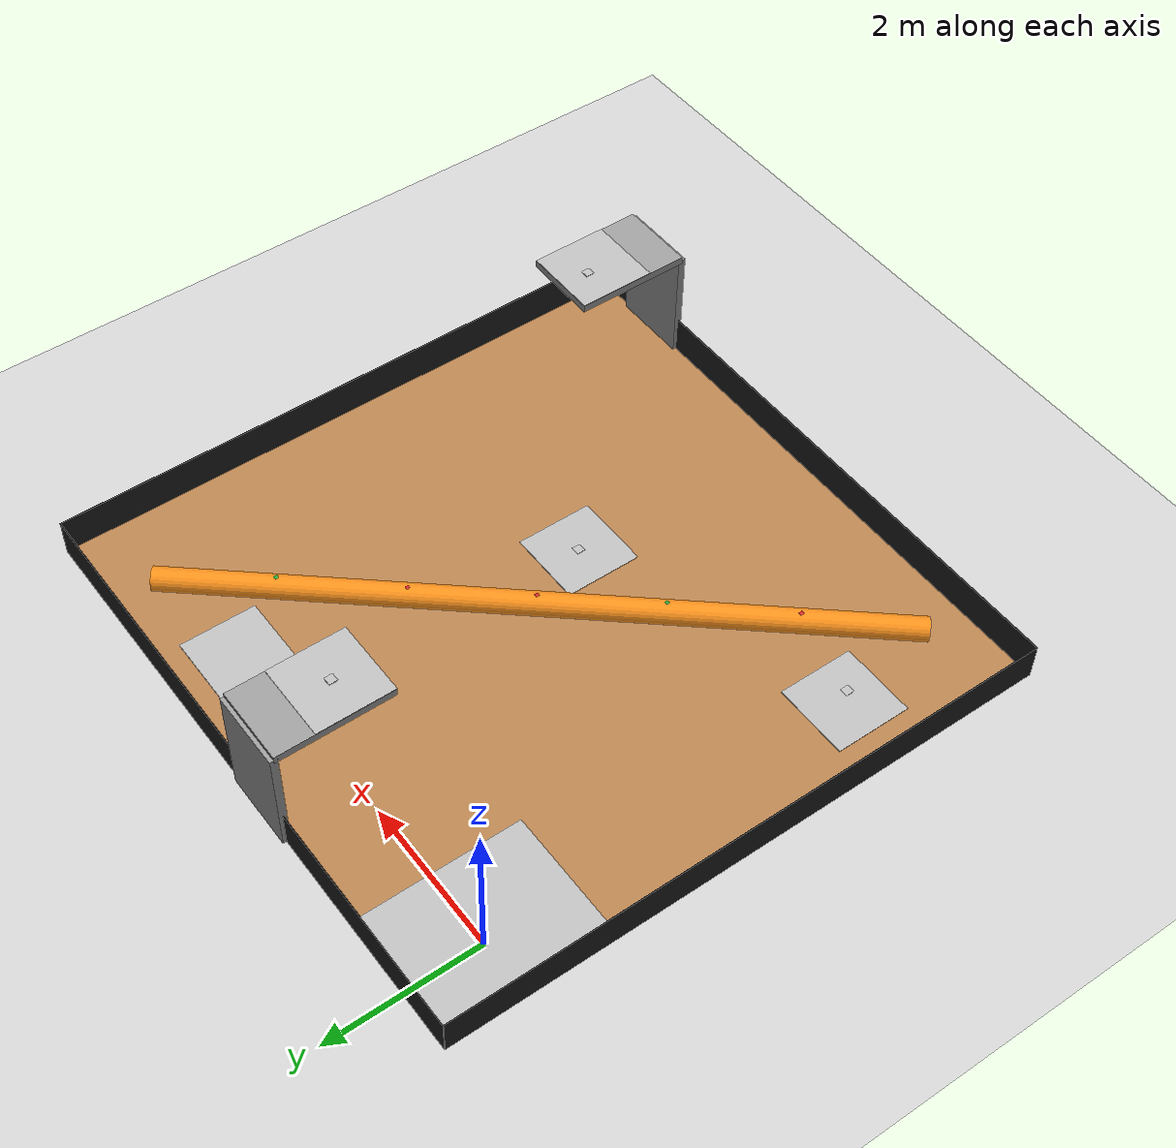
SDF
<?xml version="1.0" ?>
<sdf version="1.4">
  <world name="default">
    <include>
      <uri>model://ground_plane</uri>
    </include>
    <include>
      <uri>model://sun</uri>
    </include>

    <plugin name="ros_interface_plugin" filename="librotors_gazebo_ros_interface_plugin.so"/>

    <spherical_coordinates>
      <surface_model>EARTH_WGS84</surface_model>
      <latitude_deg>47.3667</latitude_deg>
      <longitude_deg>8.5500</longitude_deg>
      <elevation>500.0</elevation>
      <heading_deg>0</heading_deg>
    </spherical_coordinates>

    <physics type='ode'>
      <ode>
        <solver>
          <type>quick</type>
          <iters>1000</iters>
          <sor>1.3</sor>
        </solver>
        <constraints>
          <cfm>0</cfm>
          <erp>0.2</erp>
          <contact_max_correcting_vel>100</contact_max_correcting_vel>
          <contact_surface_layer>0.001</contact_surface_layer>
        </constraints>
      </ode>
      <max_step_size>0.01</max_step_size>
      <real_time_factor>1</real_time_factor>
      <real_time_update_rate>100</real_time_update_rate>
      <gravity>0 0 -9.8</gravity>
    </physics>

    <include>
      <uri>model://floor_arena</uri>
      <pose>3.25 -3.0 0.0 0.0 0.0 0.0</pose>
      <name>floor_arena</name>
    </include>

    <include>
      <uri>model://coastal_base</uri>
      <pose>0.0 0.0 0.501 0.0 0.0 0.0</pose>
      <name>coastal_base</name>
    </include>

    <include>
      <uri>model://hanging_base</uri>
      <pose>2.75 0.0 1.551 0.0 0.0 0.0</pose>
      <name>hanging_base_1</name>
    </include>

    <include>
      <uri>model://hanging_base</uri>
      <pose>6.25 -6.0 1.551 0.0 0.0 0.0</pose>
      <name>hanging_base_2</name>
    </include>

    <include>
      <uri>model://hanging_base</uri>
      <pose>4.66 0.15 0.101 0.0 0.0 0.0</pose>
      <name>land_base_1</name>
    </include>

    <include>
      <uri>model://hanging_base</uri>
      <pose>3.66 -3.9 0.101 0.0 0.0 0.0</pose>
      <name>land_base_2</name>
    </include>

    <include>
      <uri>model://hanging_base</uri>
      <pose>0.15 -5.0 0.101 0.0 0.0 0.0</pose>
      <name>land_base_3</name>
    </include>

    <include>
      <uri>model://gas_marker_1</uri>
      <pose>2.75 0.0 1.561 0.0 0.0 0.0</pose>
      <name>gas_marker_1</name>
    </include>

    <include>
      <uri>model://gas_marker_2</uri>
      <pose>6.2 -5.88 1.561 0.0 0.0 0.0</pose>
      <name>gas_marker_2</name>
    </include>

    <include>
      <uri>model://gas_marker_3</uri>
      <pose>0.23 -5.11 0.111 0.0 0.0 0.0</pose>
      <name>gas_marker_3</name>
    </include>

    <include>
      <uri>model://gas_marker_4</uri>
      <pose>3.66 -3.9 0.111 0.0 0.0 0.0</pose>
      <name>gas_marker_4</name>
    </include>

  </world>
</sdf>

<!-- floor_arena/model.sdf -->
<sdf version="1.5">
  <model name="table">
    <static>true</static>
    <link name="link">
      <collision name="surface">
        <pose>0 0 0.0 0 0 0</pose>
        <geometry>
          <box>
            <size>8.0 8.0 0.01</size>
          </box>
        </geometry>
        <surface>
          <friction>
            <ode>
              <mu>0.6</mu>
              <mu2>0.6</mu2>
            </ode>
          </friction>
        </surface>
      </collision>
      <visual name="visual1">
        <pose>0 0 0.0 0 0 0</pose>
        <geometry>
          <box>
            <size>8.0 8.0 0.01</size>
          </box>
        </geometry>
        <material>
          <script>
            <uri>file://media/materials/scripts/gazebo.material</uri>
            <name>Gazebo/WoodPallet</name>
          </script>
        </material>
      </visual>

      <collision name="surface2">
        <pose>0 4.0 0.25 0 0 0</pose>
        <geometry>
          <box>
            <size>8.0 0.01 0.5</size>
          </box>
        </geometry>
        <surface>
          <friction>
            <ode>
              <mu>0.6</mu>
              <mu2>0.6</mu2>
            </ode>
          </friction>
        </surface>
      </collision>
      <visual name="visual2">
        <pose>0 4.0 0.25 0 0 0</pose>
        <geometry>
          <box>
            <size>8.0 0.01 0.5</size>
          </box>
        </geometry>
        <material>
          <script>
            <uri>file://media/materials/scripts/gazebo.material</uri>
            <name>Gazebo/Black</name>
          </script>
        </material>
      </visual>

      <collision name="surface3">
        <pose>0 -4.0 0.25 0 0 0</pose>
        <geometry>
          <box>
            <size>8.0 0.01 0.5</size>
          </box>
        </geometry>
        <surface>
          <friction>
            <ode>
              <mu>0.6</mu>
              <mu2>0.6</mu2>
            </ode>
          </friction>
        </surface>
      </collision>
      <visual name="visual3">
        <pose>0 -4.0 0.25 0 0 0</pose>
        <geometry>
          <box>
            <size>8.0 0.01 0.5</size>
          </box>
        </geometry>
        <material>
          <script>
            <uri>file://media/materials/scripts/gazebo.material</uri>
            <name>Gazebo/Black</name>
          </script>
        </material>
      </visual>

      <collision name="surface4">
        <pose>4.0 0.0 0.25 0 0 0</pose>
        <geometry>
          <box>
            <size>0.01 8.0 0.5</size>
          </box>
        </geometry>
        <surface>
          <friction>
            <ode>
              <mu>0.6</mu>
              <mu2>0.6</mu2>
            </ode>
          </friction>
        </surface>
      </collision>
      <visual name="visual4">
        <pose>4.0 0.0 0.25 0 0 0</pose>
        <geometry>
          <box>
            <size>0.01 8.0 0.5</size>
          </box>
        </geometry>
        <material>
          <script>
            <uri>file://media/materials/scripts/gazebo.material</uri>
            <name>Gazebo/Black</name>
          </script>
        </material>
      </visual>

      <collision name="surface5">
        <pose>-4.0 0.0 0.25 0 0 0</pose>
        <geometry>
          <box>
            <size>0.01 8.0 0.5</size>
          </box>
        </geometry>
        <surface>
          <friction>
            <ode>
              <mu>0.6</mu>
              <mu2>0.6</mu2>
            </ode>
          </friction>
        </surface>
      </collision>
      <visual name="visual5">
        <pose>-4.0 0.0 0.25 0 0 0</pose>
        <geometry>
          <box>
            <size>0.01 8.0 0.5</size>
          </box>
        </geometry>
        <material>
          <script>
            <uri>file://media/materials/scripts/gazebo.material</uri>
            <name>Gazebo/Black</name>
          </script>
        </material>
      </visual>

      <collision name="surface6">
        <pose>-3.25 3.0 0.25 0 0 0</pose>
        <geometry>
          <box>
            <size>1.5 2.0 0.5</size>
          </box>
        </geometry>
        <surface>
          <friction>
            <ode>
              <mu>0.6</mu>
              <mu2>0.6</mu2>
            </ode>
          </friction>
        </surface>
      </collision>
      <visual name="visual6">
        <pose>-3.25 3.0 0.25 0 0 0</pose>
        <geometry>
          <box>
            <size>1.5 2.0 0.5</size>
          </box>
        </geometry>
        <material>
          <script>
            <uri>file://media/materials/scripts/gazebo.material</uri>
            <name>Gazebo/Black</name>
          </script>
        </material>
      </visual>

      <collision name="surface7">
        <pose>3.0 -4.0 0.75 0 0 0</pose>
        <geometry>
          <box>
            <size>1.0 0.1 1.5</size>
          </box>
        </geometry>
        <surface>
          <friction>
            <ode>
              <mu>0.6</mu>
              <mu2>0.6</mu2>
            </ode>
          </friction>
        </surface>
      </collision>
      <visual name="visual7">
        <pose>3.0 -4.0 0.75 0 0 0</pose>
        <geometry>
          <box>
            <size>1.0 0.1 1.5</size>
          </box>
        </geometry>
        <material>
          <script>
            <uri>file://media/materials/scripts/gazebo.material</uri>
            <name>Gazebo/Gray</name>
          </script>
        </material>
      </visual>

      <collision name="surface8">
        <pose>3.0 -3.25 1.5 0 0 0</pose>
        <geometry>
          <box>
            <size>1.0 1.5 0.1</size>
          </box>
        </geometry>
        <surface>
          <friction>
            <ode>
              <mu>0.6</mu>
              <mu2>0.6</mu2>
            </ode>
          </friction>
        </surface>
      </collision>
      <visual name="visual8">
        <pose>3.0 -3.25 1.5 0 0 0</pose>
        <geometry>
          <box>
            <size>1.0 1.5 0.1</size>
          </box>
        </geometry>
        <material>
          <script>
            <uri>file://media/materials/scripts/gazebo.material</uri>
            <name>Gazebo/Gray</name>
          </script>
        </material>
      </visual>

      <collision name="surface9">
        <pose>-0.5 4.0 0.75 0 0 0</pose>
        <geometry>
          <box>
            <size>1.0 0.1 1.5</size>
          </box>
        </geometry>
        <surface>
          <friction>
            <ode>
              <mu>0.6</mu>
              <mu2>0.6</mu2>
            </ode>
          </friction>
        </surface>
      </collision>
      <visual name="visual9">
        <pose>-0.5 4.0 0.75 0 0 0</pose>
        <geometry>
          <box>
            <size>1.0 0.1 1.5</size>
          </box>
        </geometry>
        <material>
          <script>
            <uri>file://media/materials/scripts/gazebo.material</uri>
            <name>Gazebo/Gray</name>
          </script>
        </material>
      </visual>

      <collision name="surface10">
        <pose>-0.5 3.25 1.5 0 0 0</pose>
        <geometry>
          <box>
            <size>1.0 1.5 0.1</size>
          </box>
        </geometry>
        <surface>
          <friction>
            <ode>
              <mu>0.6</mu>
              <mu2>0.6</mu2>
            </ode>
          </friction>
        </surface>
      </collision>
      <visual name="visual10">
        <pose>-0.5 3.25 1.5 0 0 0</pose>
        <geometry>
          <box>
            <size>1.0 1.5 0.1</size>
          </box>
        </geometry>
        <material>
          <script>
            <uri>file://media/materials/scripts/gazebo.material</uri>
            <name>Gazebo/Gray</name>
          </script>
        </material>
      </visual>

      <collision name="surface11">
        <pose>0.0 0.0 0.2 1.57 0 -0.7071</pose>
        <geometry>
          <cylinder>
              <radius>0.2</radius>
              <length>9.0</length>
          </cylinder>
        </geometry>
        <surface>
          <friction>
            <ode>
              <mu>0.6</mu>
              <mu2>0.6</mu2>
            </ode>
          </friction>
        </surface>
      </collision>
      <visual name="visual11">
        <pose>0.0 0.0 0.15 1.57 0 -0.7071</pose>
        <geometry>
          <cylinder>
              <radius>0.15</radius>
              <length>9.0</length>
          </cylinder>
        </geometry>
        <material>
          <script>
            <uri>file://media/materials/scripts/gazebo.material</uri>
            <name>Gazebo/Orange</name>
          </script>
        </material>
      </visual>

      <visual name="sensor1">
        <pose>-1.98 -2.3 0.3025 0 0 0</pose>
        <geometry>
          <box>
            <size>0.05 0.05 0.00001</size>
          </box>
        </geometry>
        <material>
          <script>
            <uri>file://media/materials/scripts/gazebo.material</uri>
            <name>Gazebo/Red</name>
          </script>
        </material>
      </visual>

      <visual name="sensor2">
        <pose>-0.96 -1.15 0.3025 0 0 0</pose>
        <geometry>
          <box>
            <size>0.05 0.05 0.00001</size>
          </box>
        </geometry>
        <material>
          <script>
            <uri>file://media/materials/scripts/gazebo.material</uri>
            <name>Gazebo/Green</name>
          </script>
        </material>
      </visual>

      <visual name="sensor3">
        <pose>0.0 0.0 0.3025 0 0 0</pose>
        <geometry>
          <box>
            <size>0.05 0.05 0.00001</size>
          </box>
        </geometry>
        <material>
          <script>
            <uri>file://media/materials/scripts/gazebo.material</uri>
            <name>Gazebo/Red</name>
          </script>
        </material>
      </visual>

      <visual name="sensor4">
        <pose>0.96 1.15 0.3025 0 0 0</pose>
        <geometry>
          <box>
            <size>0.05 0.05 0.00001</size>
          </box>
        </geometry>
        <material>
          <script>
            <uri>file://media/materials/scripts/gazebo.material</uri>
            <name>Gazebo/Red</name>
          </script>
        </material>
      </visual>

      <visual name="sensor5">
        <pose>1.98 2.3 0.3025 0 0 0</pose>
        <geometry>
          <box>
            <size>0.05 0.05 0.00001</size>
          </box>
        </geometry>
        <material>
          <script>
            <uri>file://media/materials/scripts/gazebo.material</uri>
            <name>Gazebo/Green</name>
          </script>
        </material>
      </visual>

    </link>
  </model>
</sdf>

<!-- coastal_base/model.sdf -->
<sdf version="1.5">
  <model name="coastal_base">
    <static>true</static>
    <link name="link">
      <pose>0 0 0 0 0 0</pose>
      <collision name="collision">
        <geometry>
          <box>
            <size>1.5 2.0 0.01</size>
          </box>
        </geometry>
      </collision>
      <visual name="visual">
        <cast_shadows>false</cast_shadows>
        <geometry>
          <box>
            <size>1.5 2.0 0.01</size>
          </box>
        </geometry>
        <material>
          <script>
            <uri>model://coastal_base/materials/scripts</uri>
            <uri>model://coastal_base/materials/textures</uri>
            <name>vrc/coastal_base</name>
          </script>
        </material>
      </visual>
    </link>
  </model>
</sdf>

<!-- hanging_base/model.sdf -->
<sdf version="1.5">
  <model name="hanging_base">
    <static>true</static>
    <link name="link">
      <pose>0 0 0 0 0 0</pose>
      <collision name="collision">
        <geometry>
          <box>
            <size>1.0 1.0 0.01</size>
          </box>
        </geometry>
      </collision>
      <visual name="visual">
        <cast_shadows>false</cast_shadows>
        <geometry>
          <box>
            <size>1.0 1.0 0.01</size>
          </box>
        </geometry>
        <material>
          <script>
            <uri>model://hanging_base/materials/scripts</uri>
            <uri>model://hanging_base/materials/textures</uri>
            <name>vrc/hanging_base</name>
          </script>
        </material>
      </visual>
    </link>
  </model>
</sdf>

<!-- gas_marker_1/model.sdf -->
<sdf version="1.5">
  <model name="gas_marker_1">
    <static>true</static>
    <link name="link">
      <pose>0 0 0 0 0 0</pose>
      <collision name="collision">
        <geometry>
          <box>
            <size>0.11 0.11 0.01</size>
          </box>
        </geometry>
      </collision>
      <visual name="visual">
        <cast_shadows>false</cast_shadows>
        <geometry>
          <box>
            <size>0.11 0.11 0.01</size>
          </box>
        </geometry>
        <material>
          <script>
            <uri>model://gas_marker_1/materials/scripts</uri>
            <uri>model://gas_marker_1/materials/textures</uri>
            <name>vrc/gas_marker_1</name>
          </script>
        </material>
      </visual>
    </link>
  </model>
</sdf>

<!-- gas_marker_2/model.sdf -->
<sdf version="1.5">
  <model name="gas_marker_2">
    <static>true</static>
    <link name="link">
      <pose>0 0 0 0 0 0</pose>
      <collision name="collision">
        <geometry>
          <box>
            <size>0.11 0.11 0.01</size>
          </box>
        </geometry>
      </collision>
      <visual name="visual">
        <cast_shadows>false</cast_shadows>
        <geometry>
          <box>
            <size>0.11 0.11 0.01</size>
          </box>
        </geometry>
        <material>
          <script>
            <uri>model://gas_marker_2/materials/scripts</uri>
            <uri>model://gas_marker_2/materials/textures</uri>
            <name>vrc/gas_marker_2</name>
          </script>
        </material>
      </visual>
    </link>
  </model>
</sdf>

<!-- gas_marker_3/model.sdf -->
<sdf version="1.5">
  <model name="gas_marker_3">
    <static>true</static>
    <link name="link">
      <pose>0 0 0 0 0 0</pose>
      <collision name="collision">
        <geometry>
          <box>
            <size>0.11 0.11 0.01</size>
          </box>
        </geometry>
      </collision>
      <visual name="visual">
        <cast_shadows>false</cast_shadows>
        <geometry>
          <box>
            <size>0.11 0.11 0.01</size>
          </box>
        </geometry>
        <material>
          <script>
            <uri>model://gas_marker_3/materials/scripts</uri>
            <uri>model://gas_marker_3/materials/textures</uri>
            <name>vrc/gas_marker_3</name>
          </script>
        </material>
      </visual>
    </link>
  </model>
</sdf>

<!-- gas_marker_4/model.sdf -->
<sdf version="1.5">
  <model name="gas_marker_4">
    <static>true</static>
    <link name="link">
      <pose>0 0 0 0 0 0</pose>
      <collision name="collision">
        <geometry>
          <box>
            <size>0.11 0.11 0.01</size>
          </box>
        </geometry>
      </collision>
      <visual name="visual">
        <cast_shadows>false</cast_shadows>
        <geometry>
          <box>
            <size>0.11 0.11 0.01</size>
          </box>
        </geometry>
        <material>
          <script>
            <uri>model://gas_marker_4/materials/scripts</uri>
            <uri>model://gas_marker_4/materials/textures</uri>
            <name>vrc/gas_marker_4</name>
          </script>
        </material>
      </visual>
    </link>
  </model>
</sdf>
